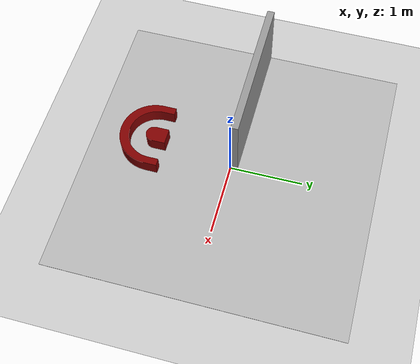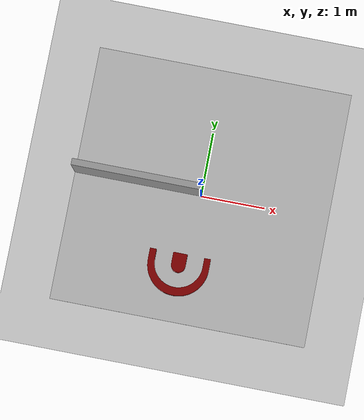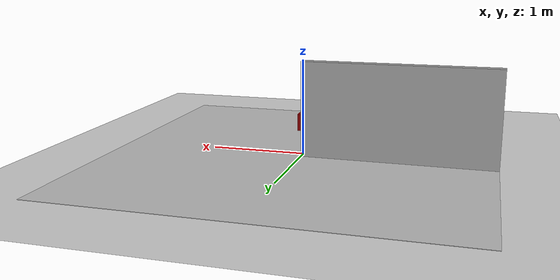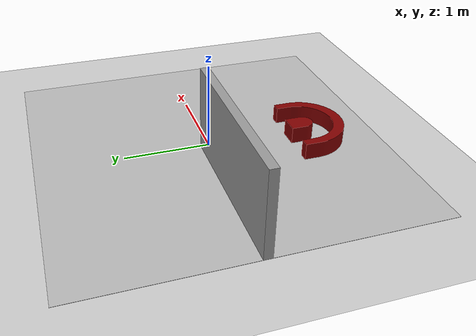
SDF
<sdf version='1.7'>
  <world name='default'>
    <light name='sun' type='directional'>
      <cast_shadows>1</cast_shadows>
      <pose>0 0 10 0 -0 0</pose>
      <diffuse>0.8 0.8 0.8 1</diffuse>
      <specular>0.2 0.2 0.2 1</specular>
      <attenuation>
        <range>1000</range>
        <constant>0.9</constant>
        <linear>0.01</linear>
        <quadratic>0.001</quadratic>
      </attenuation>
      <direction>-0.5 0.1 -0.9</direction>
      <spot>
        <inner_angle>0</inner_angle>
        <outer_angle>0</outer_angle>
        <falloff>0</falloff>
      </spot>
    </light>
    <model name='ground_plane'>
      <static>1</static>
      <link name='link'>
        <collision name='collision'>
          <geometry>
            <plane>
              <normal>0 0 1</normal>
              <size>100 100</size>
            </plane>
          </geometry>
          <surface>
            <contact>
              <collide_bitmask>65535</collide_bitmask>
              <ode/>
            </contact>
            <friction>
              <ode>
                <mu>100</mu>
                <mu2>50</mu2>
              </ode>
              <torsional>
                <ode/>
              </torsional>
            </friction>
            <bounce/>
          </surface>
          <max_contacts>10</max_contacts>
        </collision>
        <visual name='visual'>
          <cast_shadows>0</cast_shadows>
          <geometry>
            <plane>
              <normal>0 0 1</normal>
              <size>100 100</size>
            </plane>
          </geometry>
          <material>
            <script>
              <uri>file://media/materials/scripts/gazebo.material</uri>
              <name>Gazebo/Grey</name>
            </script>
          </material>
        </visual>
        <self_collide>0</self_collide>
        <enable_wind>0</enable_wind>
        <kinematic>0</kinematic>
      </link>
    </model>
    <gravity>0 0 -9.8</gravity>
    <magnetic_field>6e-06 2.3e-05 -4.2e-05</magnetic_field>
    <atmosphere type='adiabatic'/>
    <physics type='ode'>
      <max_step_size>0.001</max_step_size>
      <real_time_factor>1</real_time_factor>
      <real_time_update_rate>1000</real_time_update_rate>
    </physics>
    <scene>
      <ambient>0.4 0.4 0.4 1</ambient>
      <background>0.7 0.7 0.7 1</background>
      <shadows>1</shadows>
    </scene>
    <wind/>
    <spherical_coordinates>
      <surface_model>EARTH_WGS84</surface_model>
      <latitude_deg>0</latitude_deg>
      <longitude_deg>0</longitude_deg>
      <elevation>0</elevation>
      <heading_deg>0</heading_deg>
    </spherical_coordinates>
    <model name='course'>
      <static>1</static>
      <link name='course_link'>
        <collision name='course_collision'>
          <geometry>
            <plane>
              <normal>0 0 1</normal>
              <size>4 4</size>
            </plane>
          </geometry>
          <surface>
            <friction>
              <ode>
                <mu>100</mu>
                <mu2>50</mu2>
              </ode>
              <torsional>
                <ode/>
              </torsional>
            </friction>
            <contact>
              <ode/>
            </contact>
            <bounce/>
          </surface>
          <max_contacts>10</max_contacts>
        </collision>
        <visual name='course_visual'>
          <cast_shadows>0</cast_shadows>
          <geometry>
            <plane>
              <normal>0 0 1</normal>
              <size>4 4</size>
            </plane>
          </geometry>
          <material>
            <script>
              <uri>model://course/materials/scripts</uri>
              <uri>model://course/materials/textures</uri>
              <name>course</name>
            </script>
          </material>
        </visual>
        <self_collide>0</self_collide>
        <enable_wind>0</enable_wind>
        <kinematic>0</kinematic>
      </link>
      <pose>0 0 0 0 -0 0</pose>
    </model>
    <model name='tunnel'>
      <static>1</static>
      <link name='link_0'>
        <inertial>
          <mass>1</mass>
          <inertia>
            <ixx>0.166667</ixx>
            <ixy>0</ixy>
            <ixz>0</ixz>
            <iyy>0.166667</iyy>
            <iyz>0</iyz>
            <izz>0.166667</izz>
          </inertia>
          <pose>0 0 0 0 -0 0</pose>
        </inertial>
        <pose>-0 -0 0 0 -0 0</pose>
        <gravity>1</gravity>
        <self_collide>0</self_collide>
        <kinematic>0</kinematic>
        <enable_wind>0</enable_wind>
        <visual name='visual'>
          <pose>0 0 0 0 -0 0</pose>
          <geometry>
            <mesh>
              <uri>model://tunnel2.stl</uri>
              <scale>1 1 1</scale>
            </mesh>
          </geometry>
          <material>
            <lighting>1</lighting>
            <script>
              <uri>file://media/materials/scripts/gazebo.material</uri>
              <name>Gazebo/Grey</name>
            </script>
            <shader type='pixel'>
              <normal_map>__default__</normal_map>
            </shader>
            <ambient>0.5 0 0 1</ambient>
            <diffuse>0.5 0 0 1</diffuse>
            <specular>0.5 0 0 1</specular>
            <emissive>0.5 0 0 1</emissive>
          </material>
          <transparency>0</transparency>
          <cast_shadows>1</cast_shadows>
        </visual>
        <collision name='collision'>
          <laser_retro>0</laser_retro>
          <max_contacts>10</max_contacts>
          <pose>0 0 0 0 -0 0</pose>
          <geometry>
            <mesh>
              <uri>model://tunnel2.stl</uri>
              <scale>1 1 1</scale>
            </mesh>
          </geometry>
          <surface>
            <friction>
              <ode>
                <mu>1</mu>
                <mu2>1</mu2>
                <fdir1>0 0 0</fdir1>
                <slip1>0</slip1>
                <slip2>0</slip2>
              </ode>
              <torsional>
                <coefficient>1</coefficient>
                <patch_radius>0</patch_radius>
                <surface_radius>0</surface_radius>
                <use_patch_radius>1</use_patch_radius>
                <ode>
                  <slip>0</slip>
                </ode>
              </torsional>
            </friction>
            <bounce>
              <restitution_coefficient>0</restitution_coefficient>
              <threshold>1e+06</threshold>
            </bounce>
            <contact>
              <collide_without_contact>0</collide_without_contact>
              <collide_without_contact_bitmask>1</collide_without_contact_bitmask>
              <collide_bitmask>1</collide_bitmask>
              <ode>
                <soft_cfm>0</soft_cfm>
                <soft_erp>0.2</soft_erp>
                <kp>1e+13</kp>
                <kd>1</kd>
                <max_vel>0.01</max_vel>
                <min_depth>0</min_depth>
              </ode>
              <bullet>
                <split_impulse>1</split_impulse>
                <split_impulse_penetration_threshold>-0.01</split_impulse_penetration_threshold>
                <soft_cfm>0</soft_cfm>
                <soft_erp>0.2</soft_erp>
                <kp>1e+13</kp>
                <kd>1</kd>
              </bullet>
            </contact>
          </surface>
        </collision>
      </link>
      <static>0</static>
      <allow_auto_disable>1</allow_auto_disable>
      <pose>-0.617467 -1.59858 0 0 -0 0</pose>
    </model>
    <model name='barrier'>
      <link name='link'>
        <pose>-1 0.05 0.5 0 -0 1.57</pose>
        <inertial>
          <mass>100</mass>
          <inertia>
            <ixx>0.166667</ixx>
            <ixy>0</ixy>
            <ixz>0</ixz>
            <iyy>0.166667</iyy>
            <iyz>0</iyz>
            <izz>0.166667</izz>
          </inertia>
        </inertial>
        <self_collide>0</self_collide>
        <kinematic>1</kinematic>
        <visual name='visual'>
          <geometry>
            <box>
              <size>0.1 2 1</size>
            </box>
          </geometry>
          <material>
            <script>
              <name>Gazebo/Grey</name>
              <uri>file://media/materials/scripts/gazebo.material</uri>
            </script>
            <shader type='pixel'>
              <normal_map>__default__</normal_map>
            </shader>
            <ambient>1 1 1 1</ambient>
            <diffuse>1 1 1 1</diffuse>
            <specular>0.01 0.01 0.01 1</specular>
            <emissive>0 0 0 1</emissive>
          </material>
          <pose frame=''>0 0 0 0 -0 0</pose>
          <transparency>0</transparency>
          <cast_shadows>1</cast_shadows>
        </visual>
        <collision name='collision'>
          <laser_retro>0</laser_retro>
          <max_contacts>10</max_contacts>
          <pose frame=''>0 0 0 0 -0 0</pose>
          <geometry>
            <box>
              <size>0.1 2 1</size>
            </box>
          </geometry>
          <surface>
            <friction>
              <ode>
                <mu>1</mu>
                <mu2>1</mu2>
                <fdir1>0 0 0</fdir1>
                <slip1>0</slip1>
                <slip2>0</slip2>
              </ode>
              <torsional>
                <coefficient>1</coefficient>
                <patch_radius>0</patch_radius>
                <surface_radius>0</surface_radius>
                <use_patch_radius>1</use_patch_radius>
                <ode>
                  <slip>0</slip>
                </ode>
              </torsional>
            </friction>
            <bounce>
              <restitution_coefficient>0</restitution_coefficient>
              <threshold>1e+06</threshold>
            </bounce>
            <contact>
              <collide_without_contact>0</collide_without_contact>
              <collide_without_contact_bitmask>1</collide_without_contact_bitmask>
              <collide_bitmask>1</collide_bitmask>
              <ode>
                <soft_cfm>0</soft_cfm>
                <soft_erp>0.2</soft_erp>
                <kp>1e+13</kp>
                <kd>1</kd>
                <max_vel>0.01</max_vel>
                <min_depth>0</min_depth>
              </ode>
              <bullet>
                <split_impulse>1</split_impulse>
                <split_impulse_penetration_threshold>-0.01</split_impulse_penetration_threshold>
                <soft_cfm>0</soft_cfm>
                <soft_erp>0.2</soft_erp>
                <kp>1e+13</kp>
                <kd>1</kd>
              </bullet>
            </contact>
          </surface>
        </collision>
      </link>
      <static>0</static>
      <allow_auto_disable>1</allow_auto_disable>
    </model>
  </world>
</sdf>
